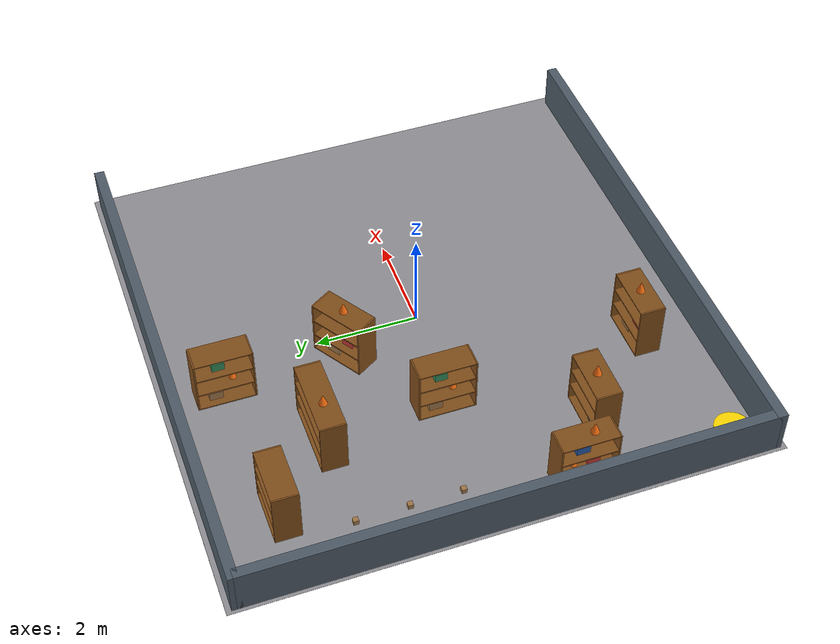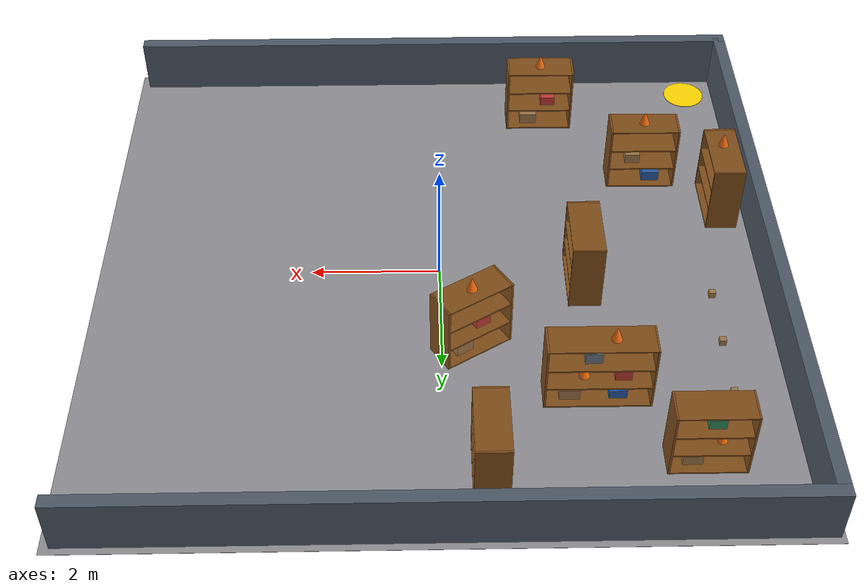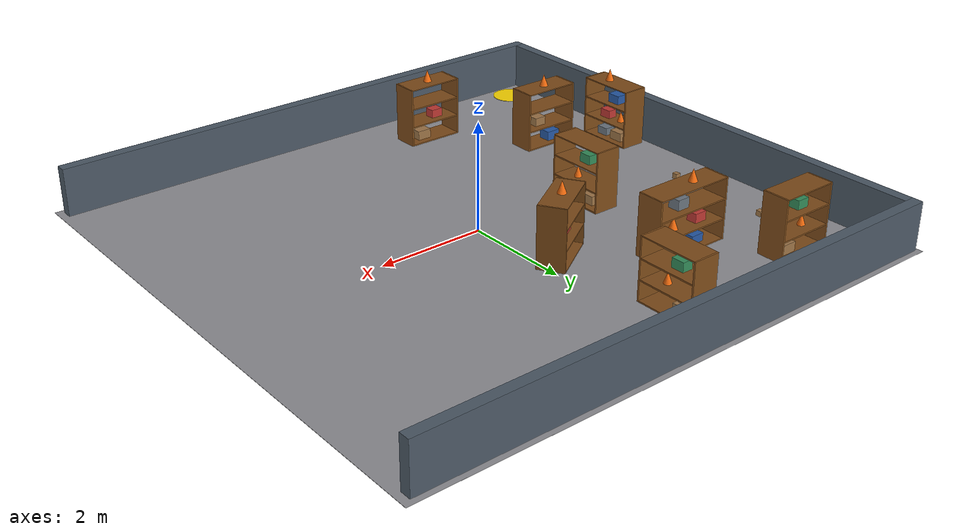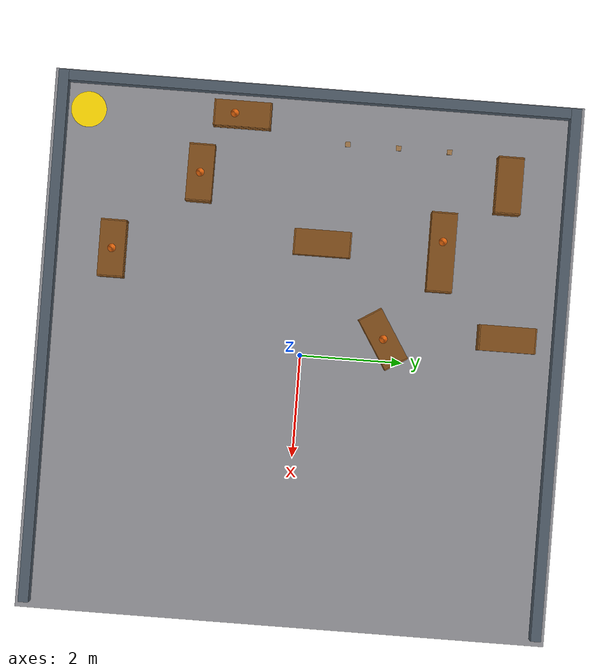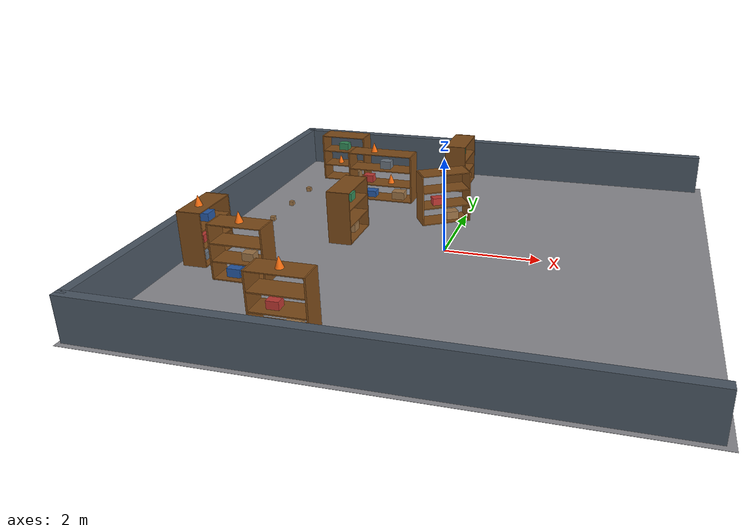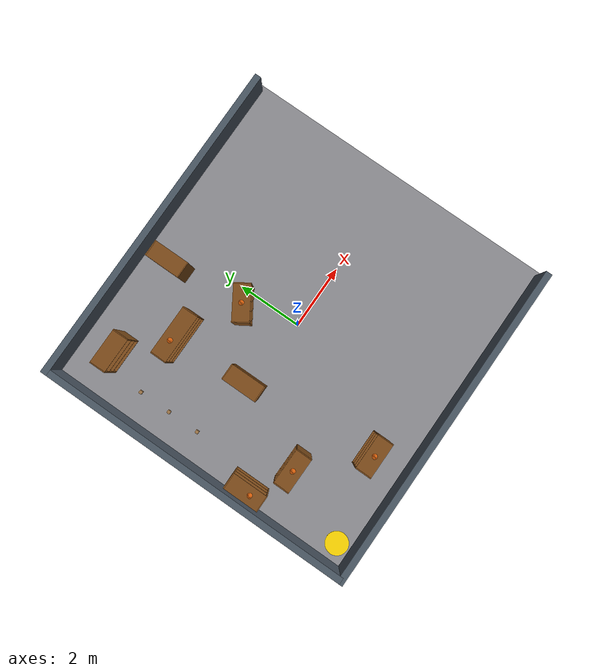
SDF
<sdf version="1.8">
 <world name="large_warehouse">
  <model name="ground_plane">
   <static>true</static>
   <link name="link">
    <collision name="collision">
     <geometry><plane><normal>0 0 1</normal><size>25 25</size></plane></geometry>
    </collision>
   </link>
  </model>
  <model name="concrete_floor">
   <static>true</static>
   <pose>0.038 0 0.0025 0 0 0</pose>
   <link name="link">
    <collision name="collision"><geometry><box><size>10.6 10.4 0.005</size></box></geometry></collision>
    <visual name="visual">
     <geometry><box><size>10.6 10.4 0.005</size></box></geometry>
     <material>
      <ambient>0.48 0.48 0.50 1</ambient>
      <diffuse>0.56 0.56 0.58 1</diffuse>
      <specular>0.06 0.06 0.06 1</specular>
     </material>
    </visual>
   </link>
  </model>
  <model name="wall_south">
   <static>true</static>
   <pose>0 -5.0 0.45 0 0 0</pose>
   <link name="link">
    <collision name="col"><geometry><box><size>10.4 0.2 0.9</size></box></geometry></collision>
    <visual name="vis">
     <geometry><box><size>10.4 0.2 0.9</size></box></geometry>
     <material><ambient>0.3 0.35 0.4 1</ambient><diffuse>0.3 0.35 0.4 1</diffuse></material>
    </visual>
   </link>
  </model>
  <model name="wall_north">
   <static>true</static>
   <pose>0 5.0 0.45 0 0 0</pose>
   <link name="link">
    <collision name="col"><geometry><box><size>10.4 0.2 0.9</size></box></geometry></collision>
    <visual name="vis">
     <geometry><box><size>10.4 0.2 0.9</size></box></geometry>
     <material><ambient>0.3 0.35 0.4 1</ambient><diffuse>0.3 0.35 0.4 1</diffuse></material>
    </visual>
   </link>
  </model>
  <model name="wall_west">
   <static>true</static>
   <pose>-5.1 0.0 0.45 0 0 0</pose>
   <link name="link">
    <collision name="col"><geometry><box><size>0.2 10.0 0.9</size></box></geometry></collision>
    <visual name="vis">
     <geometry><box><size>0.2 10.0 0.9</size></box></geometry>
     <material><ambient>0.3 0.35 0.4 1</ambient><diffuse>0.3 0.35 0.4 1</diffuse></material>
    </visual>
   </link>
  </model>
  <model name="spawn_marker">
   <static>true</static>
   <pose>-4.5 -4.5 0.01 0 0 0</pose>
   <link name="link">
    <visual name="visual">
     <geometry><cylinder><radius>0.35</radius><length>0.01</length></cylinder></geometry>
     <material><ambient>1.0 0.85 0.0 1</ambient><diffuse>1.0 0.85 0.0 1</diffuse></material>
    </visual>
   </link>
  </model>
  <model name="box_obstacle_1">
   <static>false</static>
   <pose>-4.20 0.6173 0.055 0 0 0</pose>
   <link name="link">
    <inertial>
     <mass>0.4</mass>
     <inertia>
      <ixx>0.000667</ixx>
      <iyy>0.000667</iyy>
      <izz>0.000667</izz>
      <ixy>0</ixy>
      <ixz>0</ixz>
      <iyz>0</iyz>
     </inertia>
    </inertial>
    <collision name="collision"><geometry><box><size>0.1 0.1 0.1</size></box></geometry></collision>
    <visual name="visual">
     <geometry><box><size>0.1 0.1 0.1</size></box></geometry>
     <material><ambient>0.62 0.46 0.28 1</ambient><diffuse>0.62 0.46 0.28 1</diffuse></material>
    </visual>
   </link>
  </model>
  <model name="box_obstacle_2">
   <static>false</static>
   <pose>-4.20 1.617 0.055 0 0 0</pose>
   <link name="link">
    <inertial>
     <mass>0.4</mass>
     <inertia>
      <ixx>0.000667</ixx>
      <iyy>0.000667</iyy>
      <izz>0.000667</izz>
      <ixy>0</ixy>
      <ixz>0</ixz>
      <iyz>0</iyz>
     </inertia>
    </inertial>
    <collision name="collision"><geometry><box><size>0.1 0.1 0.1</size></box></geometry></collision>
    <visual name="visual">
     <geometry><box><size>0.1 0.1 0.1</size></box></geometry>
     <material><ambient>0.62 0.46 0.28 1</ambient><diffuse>0.62 0.46 0.28 1</diffuse></material>
    </visual>
   </link>
  </model>
  <model name="box_obstacle_3">
   <static>false</static>
   <pose>-4.20 2.617 0.055 0 0 0</pose>
   <link name="link">
    <inertial>
     <mass>0.4</mass>
     <inertia>
      <ixx>0.000667</ixx>
      <iyy>0.000667</iyy>
      <izz>0.000667</izz>
      <ixy>0</ixy>
      <ixz>0</ixz>
      <iyz>0</iyz>
     </inertia>
    </inertial>
    <collision name="collision"><geometry><box><size>0.1 0.1 0.1</size></box></geometry></collision>
    <visual name="visual">
     <geometry><box><size>0.1 0.1 0.1</size></box></geometry>
     <material><ambient>0.62 0.46 0.28 1</ambient><diffuse>0.62 0.46 0.28 1</diffuse></material>
    </visual>
   </link>
  </model>
  <model name="shelf_1">
   <static>true</static>
   <pose>-2.2101 2.5934 0.03 0 0 1.5697</pose>
   <link name="link">
    <collision name="col_left">
     <pose>0 0.765 0.575 0 0 0</pose>
     <geometry><box><size>0.50 0.032 1.15</size></box></geometry>
    </collision>
    <visual name="vis_left">
     <pose>0 0.765 0.575 0 0 0</pose>
     <geometry><box><size>0.50 0.032 1.15</size></box></geometry>
     <material><ambient>0.5 0.3 0.1 1</ambient><diffuse>0.5 0.3 0.1 1</diffuse></material>
    </visual>
    <collision name="col_right">
     <pose>0 -0.765 0.575 0 0 0</pose>
     <geometry><box><size>0.50 0.032 1.15</size></box></geometry>
    </collision>
    <visual name="vis_right">
     <pose>0 -0.765 0.575 0 0 0</pose>
     <geometry><box><size>0.50 0.032 1.15</size></box></geometry>
     <material><ambient>0.5 0.3 0.1 1</ambient><diffuse>0.5 0.3 0.1 1</diffuse></material>
    </visual>
    <collision name="col_lower">
     <pose>0 0 0.0125 0 0 0</pose>
     <geometry><box><size>0.50 1.51 0.025</size></box></geometry>
    </collision>
    <visual name="vis_lower">
     <pose>0 0 0.0125 0 0 0</pose>
     <geometry><box><size>0.50 1.51 0.025</size></box></geometry>
     <material><ambient>0.5 0.3 0.1 1</ambient><diffuse>0.5 0.3 0.1 1</diffuse></material>
    </visual>
    <collision name="col_shelf_1">
     <pose>0 0 0.385 0 0 0</pose>
     <geometry><box><size>0.50 1.51 0.025</size></box></geometry>
    </collision>
    <visual name="vis_shelf_1">
     <pose>0 0 0.385 0 0 0</pose>
     <geometry><box><size>0.50 1.51 0.025</size></box></geometry>
     <material><ambient>0.5 0.3 0.1 1</ambient><diffuse>0.5 0.3 0.1 1</diffuse></material>
    </visual>
    <collision name="col_shelf_2">
     <pose>0 0 0.755 0 0 0</pose>
     <geometry><box><size>0.50 1.51 0.025</size></box></geometry>
    </collision>
    <visual name="vis_shelf_2">
     <pose>0 0 0.755 0 0 0</pose>
     <geometry><box><size>0.50 1.51 0.025</size></box></geometry>
     <material><ambient>0.5 0.3 0.1 1</ambient><diffuse>0.5 0.3 0.1 1</diffuse></material>
    </visual>
    <collision name="col_upper">
     <pose>0 0 1.140 0 0 0</pose>
     <geometry><box><size>0.50 1.51 0.020</size></box></geometry>
    </collision>
    <visual name="vis_upper">
     <pose>0 0 1.140 0 0 0</pose>
     <geometry><box><size>0.50 1.51 0.020</size></box></geometry>
     <material><ambient>0.5 0.3 0.1 1</ambient><diffuse>0.5 0.3 0.1 1</diffuse></material>
    </visual>
    <collision name="col_b1">
     <pose>0 -0.4 0.115 0 0 0</pose>
     <geometry><box><size>0.24 0.3 0.18</size></box></geometry>
    </collision>
    <visual name="vis_b1">
     <pose>0 -0.4 0.115 0 0 0</pose>
     <geometry><box><size>0.24 0.3 0.18</size></box></geometry>
     <material><ambient>0.62 0.46 0.28 1</ambient><diffuse>0.62 0.46 0.28 1</diffuse></material>
    </visual>
    <collision name="col_b2">
     <pose>0 0.3 0.1 0 0 0</pose>
     <geometry><box><size>0.22 0.26 0.15</size></box></geometry>
    </collision>
    <visual name="vis_b2">
     <pose>0 0.3 0.1 0 0 0</pose>
     <geometry><box><size>0.22 0.26 0.15</size></box></geometry>
     <material><ambient>0.15 0.35 0.65 1</ambient><diffuse>0.15 0.35 0.65 1</diffuse></material>
    </visual>
    <collision name="col_c1">
     <pose>0 -0.2 0.5075 0 0 0</pose>
     <geometry><cone><radius>0.08</radius><length>0.22</length></cone></geometry>
    </collision>
    <visual name="vis_c1">
     <pose>0 -0.2 0.5075 0 0 0</pose>
     <geometry><cone><radius>0.08</radius><length>0.22</length></cone></geometry>
     <material><ambient>0.95 0.42 0.05 1</ambient><diffuse>0.95 0.42 0.05 1</diffuse></material>
    </visual>
    <collision name="col_b3">
     <pose>0 0.35 0.4825 0 0 0</pose>
     <geometry><box><size>0.2 0.24 0.17</size></box></geometry>
    </collision>
    <visual name="vis_b3">
     <pose>0 0.35 0.4825 0 0 0</pose>
     <geometry><box><size>0.2 0.24 0.17</size></box></geometry>
     <material><ambient>0.75 0.22 0.2 1</ambient><diffuse>0.75 0.22 0.2 1</diffuse></material>
    </visual>
    <collision name="col_b4">
     <pose>0 -0.1 0.8625 0 0 0</pose>
     <geometry><box><size>0.22 0.25 0.19</size></box></geometry>
    </collision>
    <visual name="vis_b4">
     <pose>0 -0.1 0.8625 0 0 0</pose>
     <geometry><box><size>0.22 0.25 0.19</size></box></geometry>
     <material><ambient>0.42 0.46 0.5 1</ambient><diffuse>0.42 0.46 0.5 1</diffuse></material>
    </visual>
    <collision name="col_c2">
     <pose>0 0.2 1.26 0 0 0</pose>
     <geometry><cone><radius>0.08</radius><length>0.22</length></cone></geometry>
    </collision>
    <visual name="vis_c2">
     <pose>0 0.2 1.26 0 0 0</pose>
     <geometry><cone><radius>0.08</radius><length>0.22</length></cone></geometry>
     <material><ambient>0.95 0.42 0.05 1</ambient><diffuse>0.95 0.42 0.05 1</diffuse></material>
    </visual>
   </link>
  </model>
  <model name="shelf_7">
   <static>true</static>
   <pose>-2.2101 0.2662 0.03 0 0 0.0</pose>
   <link name="link">
    <collision name="col_left">
     <pose>0 0.545 0.575 0 0 0</pose>
     <geometry><box><size>0.50 0.032 1.15</size></box></geometry>
    </collision>
    <visual name="vis_left">
     <pose>0 0.545 0.575 0 0 0</pose>
     <geometry><box><size>0.50 0.032 1.15</size></box></geometry>
     <material><ambient>0.5 0.3 0.1 1</ambient><diffuse>0.5 0.3 0.1 1</diffuse></material>
    </visual>
    <collision name="col_right">
     <pose>0 -0.545 0.575 0 0 0</pose>
     <geometry><box><size>0.50 0.032 1.15</size></box></geometry>
    </collision>
    <visual name="vis_right">
     <pose>0 -0.545 0.575 0 0 0</pose>
     <geometry><box><size>0.50 0.032 1.15</size></box></geometry>
     <material><ambient>0.5 0.3 0.1 1</ambient><diffuse>0.5 0.3 0.1 1</diffuse></material>
    </visual>
    <collision name="col_lower">
     <pose>0 0 0.0125 0 0 0</pose>
     <geometry><box><size>0.50 1.07 0.025</size></box></geometry>
    </collision>
    <visual name="vis_lower">
     <pose>0 0 0.0125 0 0 0</pose>
     <geometry><box><size>0.50 1.07 0.025</size></box></geometry>
     <material><ambient>0.5 0.3 0.1 1</ambient><diffuse>0.5 0.3 0.1 1</diffuse></material>
    </visual>
    <collision name="col_shelf_1">
     <pose>0 0 0.385 0 0 0</pose>
     <geometry><box><size>0.50 1.07 0.025</size></box></geometry>
    </collision>
    <visual name="vis_shelf_1">
     <pose>0 0 0.385 0 0 0</pose>
     <geometry><box><size>0.50 1.07 0.025</size></box></geometry>
     <material><ambient>0.5 0.3 0.1 1</ambient><diffuse>0.5 0.3 0.1 1</diffuse></material>
    </visual>
    <collision name="col_shelf_2">
     <pose>0 0 0.755 0 0 0</pose>
     <geometry><box><size>0.50 1.07 0.025</size></box></geometry>
    </collision>
    <visual name="vis_shelf_2">
     <pose>0 0 0.755 0 0 0</pose>
     <geometry><box><size>0.50 1.07 0.025</size></box></geometry>
     <material><ambient>0.5 0.3 0.1 1</ambient><diffuse>0.5 0.3 0.1 1</diffuse></material>
    </visual>
    <collision name="col_upper">
     <pose>0 0 1.140 0 0 0</pose>
     <geometry><box><size>0.50 1.07 0.020</size></box></geometry>
    </collision>
    <visual name="vis_upper">
     <pose>0 0 1.140 0 0 0</pose>
     <geometry><box><size>0.50 1.07 0.020</size></box></geometry>
     <material><ambient>0.5 0.3 0.1 1</ambient><diffuse>0.5 0.3 0.1 1</diffuse></material>
    </visual>
    <collision name="col_b1">
     <pose>0 0.18 0.11 0 0 0</pose>
     <geometry><box><size>0.22 0.26 0.17</size></box></geometry>
    </collision>
    <visual name="vis_b1">
     <pose>0 0.18 0.11 0 0 0</pose>
     <geometry><box><size>0.22 0.26 0.17</size></box></geometry>
     <material><ambient>0.62 0.46 0.28 1</ambient><diffuse>0.62 0.46 0.28 1</diffuse></material>
    </visual>
    <collision name="col_c1">
     <pose>0 -0.18 0.4975 0 0 0</pose>
     <geometry><cone><radius>0.07</radius><length>0.2</length></cone></geometry>
    </collision>
    <visual name="vis_c1">
     <pose>0 -0.18 0.4975 0 0 0</pose>
     <geometry><cone><radius>0.07</radius><length>0.2</length></cone></geometry>
     <material><ambient>0.95 0.42 0.05 1</ambient><diffuse>0.95 0.42 0.05 1</diffuse></material>
    </visual>
    <collision name="col_b2">
     <pose>0 0.08 0.8525 0 0 0</pose>
     <geometry><box><size>0.2 0.24 0.17</size></box></geometry>
    </collision>
    <visual name="vis_b2">
     <pose>0 0.08 0.8525 0 0 0</pose>
     <geometry><box><size>0.2 0.24 0.17</size></box></geometry>
     <material><ambient>0.2 0.55 0.35 1</ambient><diffuse>0.2 0.55 0.35 1</diffuse></material>
    </visual>
   </link>
  </model>
  <model name="shelf_9">
   <static>true</static>
   <pose>-4.59 -1.47 0.03 0 0 0.0</pose>
   <link name="link">
    <collision name="col_left">
     <pose>0 0.545 0.575 0 0 0</pose>
     <geometry><box><size>0.50 0.032 1.15</size></box></geometry>
    </collision>
    <visual name="vis_left">
     <pose>0 0.545 0.575 0 0 0</pose>
     <geometry><box><size>0.50 0.032 1.15</size></box></geometry>
     <material><ambient>0.5 0.3 0.1 1</ambient><diffuse>0.5 0.3 0.1 1</diffuse></material>
    </visual>
    <collision name="col_right">
     <pose>0 -0.545 0.575 0 0 0</pose>
     <geometry><box><size>0.50 0.032 1.15</size></box></geometry>
    </collision>
    <visual name="vis_right">
     <pose>0 -0.545 0.575 0 0 0</pose>
     <geometry><box><size>0.50 0.032 1.15</size></box></geometry>
     <material><ambient>0.5 0.3 0.1 1</ambient><diffuse>0.5 0.3 0.1 1</diffuse></material>
    </visual>
    <collision name="col_lower">
     <pose>0 0 0.0125 0 0 0</pose>
     <geometry><box><size>0.50 1.07 0.025</size></box></geometry>
    </collision>
    <visual name="vis_lower">
     <pose>0 0 0.0125 0 0 0</pose>
     <geometry><box><size>0.50 1.07 0.025</size></box></geometry>
     <material><ambient>0.5 0.3 0.1 1</ambient><diffuse>0.5 0.3 0.1 1</diffuse></material>
    </visual>
    <collision name="col_shelf_1">
     <pose>0 0 0.385 0 0 0</pose>
     <geometry><box><size>0.50 1.07 0.025</size></box></geometry>
    </collision>
    <visual name="vis_shelf_1">
     <pose>0 0 0.385 0 0 0</pose>
     <geometry><box><size>0.50 1.07 0.025</size></box></geometry>
     <material><ambient>0.5 0.3 0.1 1</ambient><diffuse>0.5 0.3 0.1 1</diffuse></material>
    </visual>
    <collision name="col_shelf_2">
     <pose>0 0 0.755 0 0 0</pose>
     <geometry><box><size>0.50 1.07 0.025</size></box></geometry>
    </collision>
    <visual name="vis_shelf_2">
     <pose>0 0 0.755 0 0 0</pose>
     <geometry><box><size>0.50 1.07 0.025</size></box></geometry>
     <material><ambient>0.5 0.3 0.1 1</ambient><diffuse>0.5 0.3 0.1 1</diffuse></material>
    </visual>
    <collision name="col_upper">
     <pose>0 0 1.140 0 0 0</pose>
     <geometry><box><size>0.50 1.07 0.020</size></box></geometry>
    </collision>
    <visual name="vis_upper">
     <pose>0 0 1.140 0 0 0</pose>
     <geometry><box><size>0.50 1.07 0.020</size></box></geometry>
     <material><ambient>0.5 0.3 0.1 1</ambient><diffuse>0.5 0.3 0.1 1</diffuse></material>
    </visual>
    <collision name="col_b1">
     <pose>0 0.18 0.11 0 0 0</pose>
     <geometry><box><size>0.22 0.28 0.17</size></box></geometry>
    </collision>
    <visual name="vis_b1">
     <pose>0 0.18 0.11 0 0 0</pose>
     <geometry><box><size>0.22 0.28 0.17</size></box></geometry>
     <material><ambient>0.62 0.46 0.28 1</ambient><diffuse>0.62 0.46 0.28 1</diffuse></material>
    </visual>
    <collision name="col_b2">
     <pose>0 -0.2 0.1 0 0 0</pose>
     <geometry><box><size>0.2 0.24 0.15</size></box></geometry>
    </collision>
    <visual name="vis_b2">
     <pose>0 -0.2 0.1 0 0 0</pose>
     <geometry><box><size>0.2 0.24 0.15</size></box></geometry>
     <material><ambient>0.42 0.46 0.5 1</ambient><diffuse>0.42 0.46 0.5 1</diffuse></material>
    </visual>
    <collision name="col_b3">
     <pose>0 -0.15 0.4775 0 0 0</pose>
     <geometry><box><size>0.18 0.24 0.16</size></box></geometry>
    </collision>
    <visual name="vis_b3">
     <pose>0 -0.15 0.4775 0 0 0</pose>
     <geometry><box><size>0.18 0.24 0.16</size></box></geometry>
     <material><ambient>0.75 0.22 0.2 1</ambient><diffuse>0.75 0.22 0.2 1</diffuse></material>
    </visual>
    <collision name="col_c1">
     <pose>0 0.2 0.4975 0 0 0</pose>
     <geometry><cone><radius>0.07</radius><length>0.2</length></cone></geometry>
    </collision>
    <visual name="vis_c1">
     <pose>0 0.2 0.4975 0 0 0</pose>
     <geometry><cone><radius>0.07</radius><length>0.2</length></cone></geometry>
     <material><ambient>0.95 0.42 0.05 1</ambient><diffuse>0.95 0.42 0.05 1</diffuse></material>
    </visual>
    <collision name="col_b4">
     <pose>0 0.08 0.8525 0 0 0</pose>
     <geometry><box><size>0.22 0.26 0.17</size></box></geometry>
    </collision>
    <visual name="vis_b4">
     <pose>0 0.08 0.8525 0 0 0</pose>
     <geometry><box><size>0.22 0.26 0.17</size></box></geometry>
     <material><ambient>0.15 0.35 0.65 1</ambient><diffuse>0.15 0.35 0.65 1</diffuse></material>
    </visual>
    <collision name="col_c2">
     <pose>0 -0.15 1.26 0 0 0</pose>
     <geometry><cone><radius>0.08</radius><length>0.22</length></cone></geometry>
    </collision>
    <visual name="vis_c2">
     <pose>0 -0.15 1.26 0 0 0</pose>
     <geometry><cone><radius>0.08</radius><length>0.22</length></cone></geometry>
     <material><ambient>0.95 0.42 0.05 1</ambient><diffuse>0.95 0.42 0.05 1</diffuse></material>
    </visual>
   </link>
  </model>
  <model name="shelf_10">
   <static>true</static>
   <pose>-0.6226 3.9863 0.03 0 0 0.0</pose>
   <link name="link">
    <collision name="col_left">
     <pose>0 0.545 0.575 0 0 0</pose>
     <geometry><box><size>0.50 0.032 1.15</size></box></geometry>
    </collision>
    <visual name="vis_left">
     <pose>0 0.545 0.575 0 0 0</pose>
     <geometry><box><size>0.50 0.032 1.15</size></box></geometry>
     <material><ambient>0.5 0.3 0.1 1</ambient><diffuse>0.5 0.3 0.1 1</diffuse></material>
    </visual>
    <collision name="col_right">
     <pose>0 -0.545 0.575 0 0 0</pose>
     <geometry><box><size>0.50 0.032 1.15</size></box></geometry>
    </collision>
    <visual name="vis_right">
     <pose>0 -0.545 0.575 0 0 0</pose>
     <geometry><box><size>0.50 0.032 1.15</size></box></geometry>
     <material><ambient>0.5 0.3 0.1 1</ambient><diffuse>0.5 0.3 0.1 1</diffuse></material>
    </visual>
    <collision name="col_lower">
     <pose>0 0 0.0125 0 0 0</pose>
     <geometry><box><size>0.50 1.07 0.025</size></box></geometry>
    </collision>
    <visual name="vis_lower">
     <pose>0 0 0.0125 0 0 0</pose>
     <geometry><box><size>0.50 1.07 0.025</size></box></geometry>
     <material><ambient>0.5 0.3 0.1 1</ambient><diffuse>0.5 0.3 0.1 1</diffuse></material>
    </visual>
    <collision name="col_shelf_1">
     <pose>0 0 0.385 0 0 0</pose>
     <geometry><box><size>0.50 1.07 0.025</size></box></geometry>
    </collision>
    <visual name="vis_shelf_1">
     <pose>0 0 0.385 0 0 0</pose>
     <geometry><box><size>0.50 1.07 0.025</size></box></geometry>
     <material><ambient>0.5 0.3 0.1 1</ambient><diffuse>0.5 0.3 0.1 1</diffuse></material>
    </visual>
    <collision name="col_shelf_2">
     <pose>0 0 0.755 0 0 0</pose>
     <geometry><box><size>0.50 1.07 0.025</size></box></geometry>
    </collision>
    <visual name="vis_shelf_2">
     <pose>0 0 0.755 0 0 0</pose>
     <geometry><box><size>0.50 1.07 0.025</size></box></geometry>
     <material><ambient>0.5 0.3 0.1 1</ambient><diffuse>0.5 0.3 0.1 1</diffuse></material>
    </visual>
    <collision name="col_upper">
     <pose>0 0 1.140 0 0 0</pose>
     <geometry><box><size>0.50 1.07 0.020</size></box></geometry>
    </collision>
    <visual name="vis_upper">
     <pose>0 0 1.140 0 0 0</pose>
     <geometry><box><size>0.50 1.07 0.020</size></box></geometry>
     <material><ambient>0.5 0.3 0.1 1</ambient><diffuse>0.5 0.3 0.1 1</diffuse></material>
    </visual>
    <collision name="col_b1">
     <pose>0 0.18 0.11 0 0 0</pose>
     <geometry><box><size>0.22 0.26 0.17</size></box></geometry>
    </collision>
    <visual name="vis_b1">
     <pose>0 0.18 0.11 0 0 0</pose>
     <geometry><box><size>0.22 0.26 0.17</size></box></geometry>
     <material><ambient>0.62 0.46 0.28 1</ambient><diffuse>0.62 0.46 0.28 1</diffuse></material>
    </visual>
    <collision name="col_c1">
     <pose>0 -0.18 0.4975 0 0 0</pose>
     <geometry><cone><radius>0.07</radius><length>0.2</length></cone></geometry>
    </collision>
    <visual name="vis_c1">
     <pose>0 -0.18 0.4975 0 0 0</pose>
     <geometry><cone><radius>0.07</radius><length>0.2</length></cone></geometry>
     <material><ambient>0.95 0.42 0.05 1</ambient><diffuse>0.95 0.42 0.05 1</diffuse></material>
    </visual>
    <collision name="col_b2">
     <pose>0 0.08 0.8525 0 0 0</pose>
     <geometry><box><size>0.2 0.24 0.17</size></box></geometry>
    </collision>
    <visual name="vis_b2">
     <pose>0 0.08 0.8525 0 0 0</pose>
     <geometry><box><size>0.2 0.24 0.17</size></box></geometry>
     <material><ambient>0.2 0.55 0.35 1</ambient><diffuse>0.2 0.55 0.35 1</diffuse></material>
    </visual>
   </link>
  </model>
  <model name="shelf_11">
   <static>true</static>
   <pose>-3.395 -2.203 0.03 0 0 -1.5776</pose>
   <link name="link">
    <collision name="col_left">
     <pose>0 0.545 0.575 0 0 0</pose>
     <geometry><box><size>0.50 0.032 1.15</size></box></geometry>
    </collision>
    <visual name="vis_left">
     <pose>0 0.545 0.575 0 0 0</pose>
     <geometry><box><size>0.50 0.032 1.15</size></box></geometry>
     <material><ambient>0.5 0.3 0.1 1</ambient><diffuse>0.5 0.3 0.1 1</diffuse></material>
    </visual>
    <collision name="col_right">
     <pose>0 -0.545 0.575 0 0 0</pose>
     <geometry><box><size>0.50 0.032 1.15</size></box></geometry>
    </collision>
    <visual name="vis_right">
     <pose>0 -0.545 0.575 0 0 0</pose>
     <geometry><box><size>0.50 0.032 1.15</size></box></geometry>
     <material><ambient>0.5 0.3 0.1 1</ambient><diffuse>0.5 0.3 0.1 1</diffuse></material>
    </visual>
    <collision name="col_lower">
     <pose>0 0 0.0125 0 0 0</pose>
     <geometry><box><size>0.50 1.07 0.025</size></box></geometry>
    </collision>
    <visual name="vis_lower">
     <pose>0 0 0.0125 0 0 0</pose>
     <geometry><box><size>0.50 1.07 0.025</size></box></geometry>
     <material><ambient>0.5 0.3 0.1 1</ambient><diffuse>0.5 0.3 0.1 1</diffuse></material>
    </visual>
    <collision name="col_shelf_1">
     <pose>0 0 0.385 0 0 0</pose>
     <geometry><box><size>0.50 1.07 0.025</size></box></geometry>
    </collision>
    <visual name="vis_shelf_1">
     <pose>0 0 0.385 0 0 0</pose>
     <geometry><box><size>0.50 1.07 0.025</size></box></geometry>
     <material><ambient>0.5 0.3 0.1 1</ambient><diffuse>0.5 0.3 0.1 1</diffuse></material>
    </visual>
    <collision name="col_shelf_2">
     <pose>0 0 0.755 0 0 0</pose>
     <geometry><box><size>0.50 1.07 0.025</size></box></geometry>
    </collision>
    <visual name="vis_shelf_2">
     <pose>0 0 0.755 0 0 0</pose>
     <geometry><box><size>0.50 1.07 0.025</size></box></geometry>
     <material><ambient>0.5 0.3 0.1 1</ambient><diffuse>0.5 0.3 0.1 1</diffuse></material>
    </visual>
    <collision name="col_upper">
     <pose>0 0 1.140 0 0 0</pose>
     <geometry><box><size>0.50 1.07 0.020</size></box></geometry>
    </collision>
    <visual name="vis_upper">
     <pose>0 0 1.140 0 0 0</pose>
     <geometry><box><size>0.50 1.07 0.020</size></box></geometry>
     <material><ambient>0.5 0.3 0.1 1</ambient><diffuse>0.5 0.3 0.1 1</diffuse></material>
    </visual>
    <collision name="col_b1">
     <pose>0 -0.18 0.115 0 0 0</pose>
     <geometry><box><size>0.24 0.28 0.18</size></box></geometry>
    </collision>
    <visual name="vis_b1">
     <pose>0 -0.18 0.115 0 0 0</pose>
     <geometry><box><size>0.24 0.28 0.18</size></box></geometry>
     <material><ambient>0.15 0.35 0.65 1</ambient><diffuse>0.15 0.35 0.65 1</diffuse></material>
    </visual>
    <collision name="col_b2">
     <pose>0 0.15 0.4775 0 0 0</pose>
     <geometry><box><size>0.2 0.24 0.16</size></box></geometry>
    </collision>
    <visual name="vis_b2">
     <pose>0 0.15 0.4775 0 0 0</pose>
     <geometry><box><size>0.2 0.24 0.16</size></box></geometry>
     <material><ambient>0.62 0.46 0.28 1</ambient><diffuse>0.62 0.46 0.28 1</diffuse></material>
    </visual>
    <collision name="col_c1">
     <pose>0 0 1.26 0 0 0</pose>
     <geometry><cone><radius>0.08</radius><length>0.22</length></cone></geometry>
    </collision>
    <visual name="vis_c1">
     <pose>0 0 1.26 0 0 0</pose>
     <geometry><cone><radius>0.08</radius><length>0.22</length></cone></geometry>
     <material><ambient>0.95 0.42 0.05 1</ambient><diffuse>0.95 0.42 0.05 1</diffuse></material>
    </visual>
   </link>
  </model>
  <model name="shelf_12">
   <static>true</static>
   <pose>-3.60 3.80 0.03 0 0 1.57</pose>
   <link name="link">
    <collision name="col_left">
     <pose>0 0.545 0.575 0 0 0</pose>
     <geometry><box><size>0.50 0.032 1.15</size></box></geometry>
    </collision>
    <visual name="vis_left">
     <pose>0 0.545 0.575 0 0 0</pose>
     <geometry><box><size>0.50 0.032 1.15</size></box></geometry>
     <material><ambient>0.5 0.3 0.1 1</ambient><diffuse>0.5 0.3 0.1 1</diffuse></material>
    </visual>
    <collision name="col_right">
     <pose>0 -0.545 0.575 0 0 0</pose>
     <geometry><box><size>0.50 0.032 1.15</size></box></geometry>
    </collision>
    <visual name="vis_right">
     <pose>0 -0.545 0.575 0 0 0</pose>
     <geometry><box><size>0.50 0.032 1.15</size></box></geometry>
     <material><ambient>0.5 0.3 0.1 1</ambient><diffuse>0.5 0.3 0.1 1</diffuse></material>
    </visual>
    <collision name="col_lower">
     <pose>0 0 0.0125 0 0 0</pose>
     <geometry><box><size>0.50 1.07 0.025</size></box></geometry>
    </collision>
    <visual name="vis_lower">
     <pose>0 0 0.0125 0 0 0</pose>
     <geometry><box><size>0.50 1.07 0.025</size></box></geometry>
     <material><ambient>0.5 0.3 0.1 1</ambient><diffuse>0.5 0.3 0.1 1</diffuse></material>
    </visual>
    <collision name="col_shelf_1">
     <pose>0 0 0.385 0 0 0</pose>
     <geometry><box><size>0.50 1.07 0.025</size></box></geometry>
    </collision>
    <visual name="vis_shelf_1">
     <pose>0 0 0.385 0 0 0</pose>
     <geometry><box><size>0.50 1.07 0.025</size></box></geometry>
     <material><ambient>0.5 0.3 0.1 1</ambient><diffuse>0.5 0.3 0.1 1</diffuse></material>
    </visual>
    <collision name="col_shelf_2">
     <pose>0 0 0.755 0 0 0</pose>
     <geometry><box><size>0.50 1.07 0.025</size></box></geometry>
    </collision>
    <visual name="vis_shelf_2">
     <pose>0 0 0.755 0 0 0</pose>
     <geometry><box><size>0.50 1.07 0.025</size></box></geometry>
     <material><ambient>0.5 0.3 0.1 1</ambient><diffuse>0.5 0.3 0.1 1</diffuse></material>
    </visual>
    <collision name="col_upper">
     <pose>0 0 1.140 0 0 0</pose>
     <geometry><box><size>0.50 1.07 0.020</size></box></geometry>
    </collision>
    <visual name="vis_upper">
     <pose>0 0 1.140 0 0 0</pose>
     <geometry><box><size>0.50 1.07 0.020</size></box></geometry>
     <material><ambient>0.5 0.3 0.1 1</ambient><diffuse>0.5 0.3 0.1 1</diffuse></material>
    </visual>
    <collision name="col_b1">
     <pose>0 -0.2 0.115 0 0 0</pose>
     <geometry><box><size>0.22 0.28 0.18</size></box></geometry>
    </collision>
    <visual name="vis_b1">
     <pose>0 -0.2 0.115 0 0 0</pose>
     <geometry><box><size>0.22 0.28 0.18</size></box></geometry>
     <material><ambient>0.62 0.46 0.28 1</ambient><diffuse>0.62 0.46 0.28 1</diffuse></material>
    </visual>
    <collision name="col_c1">
     <pose>0 0.18 0.4975 0 0 0</pose>
     <geometry><cone><radius>0.07</radius><length>0.2</length></cone></geometry>
    </collision>
    <visual name="vis_c1">
     <pose>0 0.18 0.4975 0 0 0</pose>
     <geometry><cone><radius>0.07</radius><length>0.2</length></cone></geometry>
     <material><ambient>0.95 0.42 0.05 1</ambient><diffuse>0.95 0.42 0.05 1</diffuse></material>
    </visual>
    <collision name="col_b2">
     <pose>0 0.05 0.8525 0 0 0</pose>
     <geometry><box><size>0.2 0.24 0.17</size></box></geometry>
    </collision>
    <visual name="vis_b2">
     <pose>0 0.05 0.8525 0 0 0</pose>
     <geometry><box><size>0.2 0.24 0.17</size></box></geometry>
     <material><ambient>0.2 0.55 0.35 1</ambient><diffuse>0.2 0.55 0.35 1</diffuse></material>
    </visual>
   </link>
  </model>
  <model name="shelf_16">
   <static>true</static>
   <pose>-1.80 -3.80 0.03 0 0 1.57</pose>
   <link name="link">
    <collision name="col_left">
     <pose>0 0.545 0.575 0 0 0</pose>
     <geometry><box><size>0.50 0.032 1.15</size></box></geometry>
    </collision>
    <visual name="vis_left">
     <pose>0 0.545 0.575 0 0 0</pose>
     <geometry><box><size>0.50 0.032 1.15</size></box></geometry>
     <material><ambient>0.5 0.3 0.1 1</ambient><diffuse>0.5 0.3 0.1 1</diffuse></material>
    </visual>
    <collision name="col_right">
     <pose>0 -0.545 0.575 0 0 0</pose>
     <geometry><box><size>0.50 0.032 1.15</size></box></geometry>
    </collision>
    <visual name="vis_right">
     <pose>0 -0.545 0.575 0 0 0</pose>
     <geometry><box><size>0.50 0.032 1.15</size></box></geometry>
     <material><ambient>0.5 0.3 0.1 1</ambient><diffuse>0.5 0.3 0.1 1</diffuse></material>
    </visual>
    <collision name="col_lower">
     <pose>0 0 0.0125 0 0 0</pose>
     <geometry><box><size>0.50 1.07 0.025</size></box></geometry>
    </collision>
    <visual name="vis_lower">
     <pose>0 0 0.0125 0 0 0</pose>
     <geometry><box><size>0.50 1.07 0.025</size></box></geometry>
     <material><ambient>0.5 0.3 0.1 1</ambient><diffuse>0.5 0.3 0.1 1</diffuse></material>
    </visual>
    <collision name="col_shelf_1">
     <pose>0 0 0.385 0 0 0</pose>
     <geometry><box><size>0.50 1.07 0.025</size></box></geometry>
    </collision>
    <visual name="vis_shelf_1">
     <pose>0 0 0.385 0 0 0</pose>
     <geometry><box><size>0.50 1.07 0.025</size></box></geometry>
     <material><ambient>0.5 0.3 0.1 1</ambient><diffuse>0.5 0.3 0.1 1</diffuse></material>
    </visual>
    <collision name="col_shelf_2">
     <pose>0 0 0.755 0 0 0</pose>
     <geometry><box><size>0.50 1.07 0.025</size></box></geometry>
    </collision>
    <visual name="vis_shelf_2">
     <pose>0 0 0.755 0 0 0</pose>
     <geometry><box><size>0.50 1.07 0.025</size></box></geometry>
     <material><ambient>0.5 0.3 0.1 1</ambient><diffuse>0.5 0.3 0.1 1</diffuse></material>
    </visual>
    <collision name="col_upper">
     <pose>0 0 1.140 0 0 0</pose>
     <geometry><box><size>0.50 1.07 0.020</size></box></geometry>
    </collision>
    <visual name="vis_upper">
     <pose>0 0 1.140 0 0 0</pose>
     <geometry><box><size>0.50 1.07 0.020</size></box></geometry>
     <material><ambient>0.5 0.3 0.1 1</ambient><diffuse>0.5 0.3 0.1 1</diffuse></material>
    </visual>
    <collision name="col_b1">
     <pose>0 -0.18 0.115 0 0 0</pose>
     <geometry><box><size>0.24 0.28 0.18</size></box></geometry>
    </collision>
    <visual name="vis_b1">
     <pose>0 -0.18 0.115 0 0 0</pose>
     <geometry><box><size>0.24 0.28 0.18</size></box></geometry>
     <material><ambient>0.62 0.46 0.28 1</ambient><diffuse>0.62 0.46 0.28 1</diffuse></material>
    </visual>
    <collision name="col_b2">
     <pose>0 0.15 0.4775 0 0 0</pose>
     <geometry><box><size>0.2 0.24 0.16</size></box></geometry>
    </collision>
    <visual name="vis_b2">
     <pose>0 0.15 0.4775 0 0 0</pose>
     <geometry><box><size>0.2 0.24 0.16</size></box></geometry>
     <material><ambient>0.75 0.22 0.2 1</ambient><diffuse>0.75 0.22 0.2 1</diffuse></material>
    </visual>
    <collision name="col_c1">
     <pose>0 0 1.26 0 0 0</pose>
     <geometry><cone><radius>0.08</radius><length>0.22</length></cone></geometry>
    </collision>
    <visual name="vis_c1">
     <pose>0 0 1.26 0 0 0</pose>
     <geometry><cone><radius>0.08</radius><length>0.22</length></cone></geometry>
     <material><ambient>0.95 0.42 0.05 1</ambient><diffuse>0.95 0.42 0.05 1</diffuse></material>
    </visual>
   </link>
  </model>
  <model name="shelf_17">
   <static>true</static>
   <pose>-0.4378 1.5866 0.03 0 0 2.1298</pose>
   <link name="link">
    <collision name="col_left">
     <pose>0 0.545 0.575 0 0 0</pose>
     <geometry><box><size>0.50 0.032 1.15</size></box></geometry>
    </collision>
    <visual name="vis_left">
     <pose>0 0.545 0.575 0 0 0</pose>
     <geometry><box><size>0.50 0.032 1.15</size></box></geometry>
     <material><ambient>0.5 0.3 0.1 1</ambient><diffuse>0.5 0.3 0.1 1</diffuse></material>
    </visual>
    <collision name="col_right">
     <pose>0 -0.545 0.575 0 0 0</pose>
     <geometry><box><size>0.50 0.032 1.15</size></box></geometry>
    </collision>
    <visual name="vis_right">
     <pose>0 -0.545 0.575 0 0 0</pose>
     <geometry><box><size>0.50 0.032 1.15</size></box></geometry>
     <material><ambient>0.5 0.3 0.1 1</ambient><diffuse>0.5 0.3 0.1 1</diffuse></material>
    </visual>
    <collision name="col_lower">
     <pose>0 0 0.0125 0 0 0</pose>
     <geometry><box><size>0.50 1.07 0.025</size></box></geometry>
    </collision>
    <visual name="vis_lower">
     <pose>0 0 0.0125 0 0 0</pose>
     <geometry><box><size>0.50 1.07 0.025</size></box></geometry>
     <material><ambient>0.5 0.3 0.1 1</ambient><diffuse>0.5 0.3 0.1 1</diffuse></material>
    </visual>
    <collision name="col_shelf_1">
     <pose>0 0 0.385 0 0 0</pose>
     <geometry><box><size>0.50 1.07 0.025</size></box></geometry>
    </collision>
    <visual name="vis_shelf_1">
     <pose>0 0 0.385 0 0 0</pose>
     <geometry><box><size>0.50 1.07 0.025</size></box></geometry>
     <material><ambient>0.5 0.3 0.1 1</ambient><diffuse>0.5 0.3 0.1 1</diffuse></material>
    </visual>
    <collision name="col_shelf_2">
     <pose>0 0 0.755 0 0 0</pose>
     <geometry><box><size>0.50 1.07 0.025</size></box></geometry>
    </collision>
    <visual name="vis_shelf_2">
     <pose>0 0 0.755 0 0 0</pose>
     <geometry><box><size>0.50 1.07 0.025</size></box></geometry>
     <material><ambient>0.5 0.3 0.1 1</ambient><diffuse>0.5 0.3 0.1 1</diffuse></material>
    </visual>
    <collision name="col_upper">
     <pose>0 0 1.140 0 0 0</pose>
     <geometry><box><size>0.50 1.07 0.020</size></box></geometry>
    </collision>
    <visual name="vis_upper">
     <pose>0 0 1.140 0 0 0</pose>
     <geometry><box><size>0.50 1.07 0.020</size></box></geometry>
     <material><ambient>0.5 0.3 0.1 1</ambient><diffuse>0.5 0.3 0.1 1</diffuse></material>
    </visual>
    <collision name="col_b1">
     <pose>0 -0.18 0.115 0 0 0</pose>
     <geometry><box><size>0.24 0.28 0.18</size></box></geometry>
    </collision>
    <visual name="vis_b1">
     <pose>0 -0.18 0.115 0 0 0</pose>
     <geometry><box><size>0.24 0.28 0.18</size></box></geometry>
     <material><ambient>0.62 0.46 0.28 1</ambient><diffuse>0.62 0.46 0.28 1</diffuse></material>
    </visual>
    <collision name="col_b2">
     <pose>0 0.15 0.4775 0 0 0</pose>
     <geometry><box><size>0.2 0.24 0.16</size></box></geometry>
    </collision>
    <visual name="vis_b2">
     <pose>0 0.15 0.4775 0 0 0</pose>
     <geometry><box><size>0.2 0.24 0.16</size></box></geometry>
     <material><ambient>0.75 0.22 0.2 1</ambient><diffuse>0.75 0.22 0.2 1</diffuse></material>
    </visual>
    <collision name="col_c1">
     <pose>0 0 1.26 0 0 0</pose>
     <geometry><cone><radius>0.08</radius><length>0.22</length></cone></geometry>
    </collision>
    <visual name="vis_c1">
     <pose>0 0 1.26 0 0 0</pose>
     <geometry><cone><radius>0.08</radius><length>0.22</length></cone></geometry>
     <material><ambient>0.95 0.42 0.05 1</ambient><diffuse>0.95 0.42 0.05 1</diffuse></material>
    </visual>
   </link>
  </model>
 </world>
</sdf>
